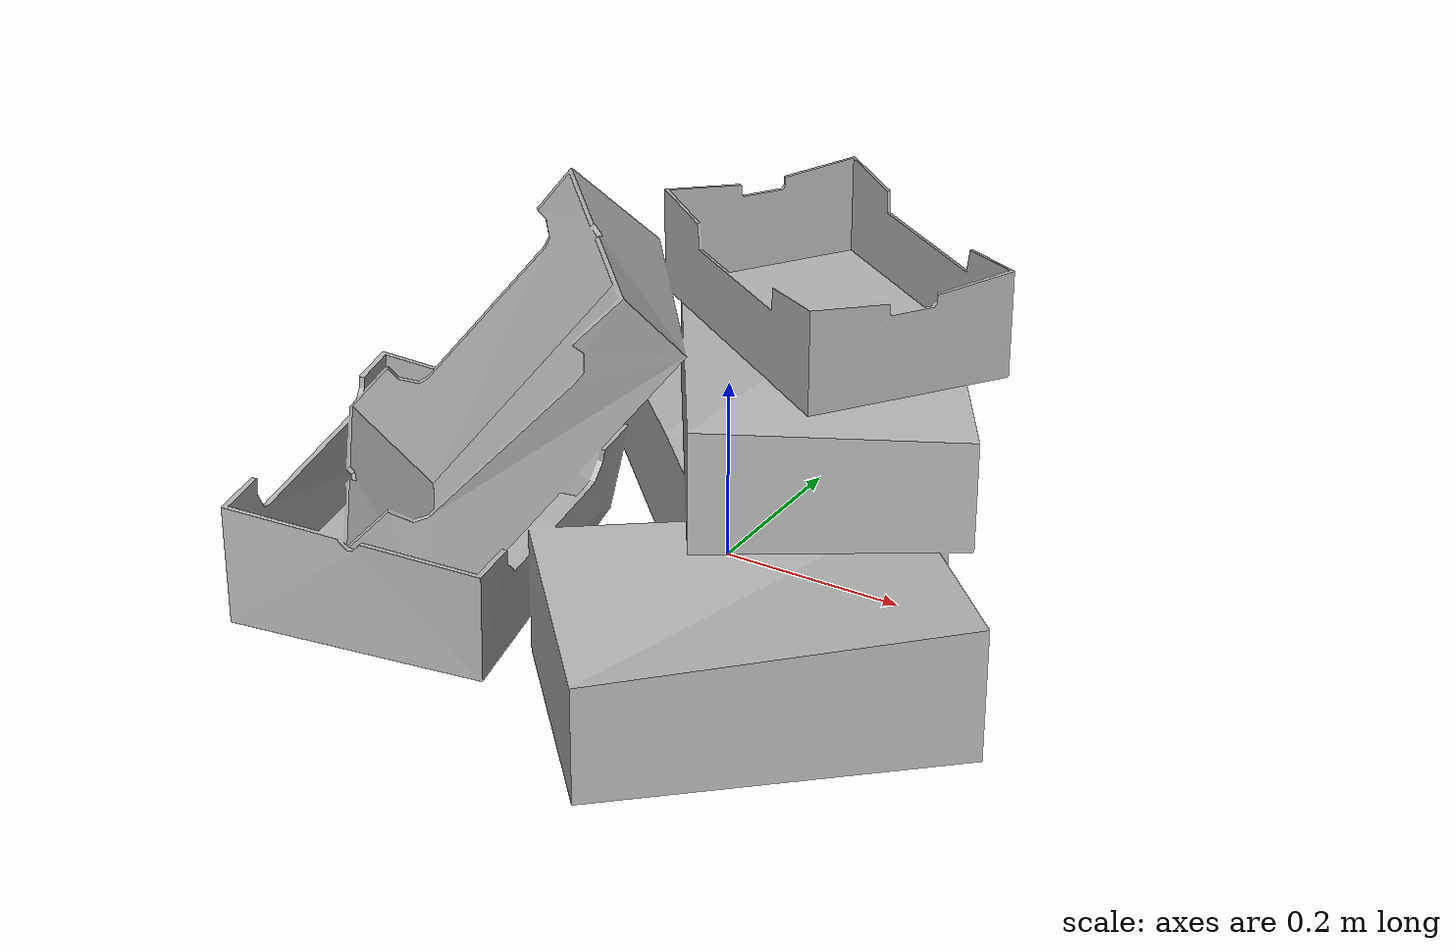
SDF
<?xml version="1.0" ?>
<sdf version="1.5">
  <model name="boxes">
    <link name="link">
      <pose>0 0 0 0 0 0</pose>
      <collision name="collision">
        <geometry>
          <mesh>
            <uri>model://boxes/meshes/model.dae</uri>
          </mesh>
        </geometry>
      </collision>
      <visual name="visual">
        <geometry>
          <mesh>
            <uri>model://boxes/meshes/model.dae</uri>
          </mesh>
        </geometry>
      </visual>
    </link>
    <static>1</static>
  </model>
</sdf>
